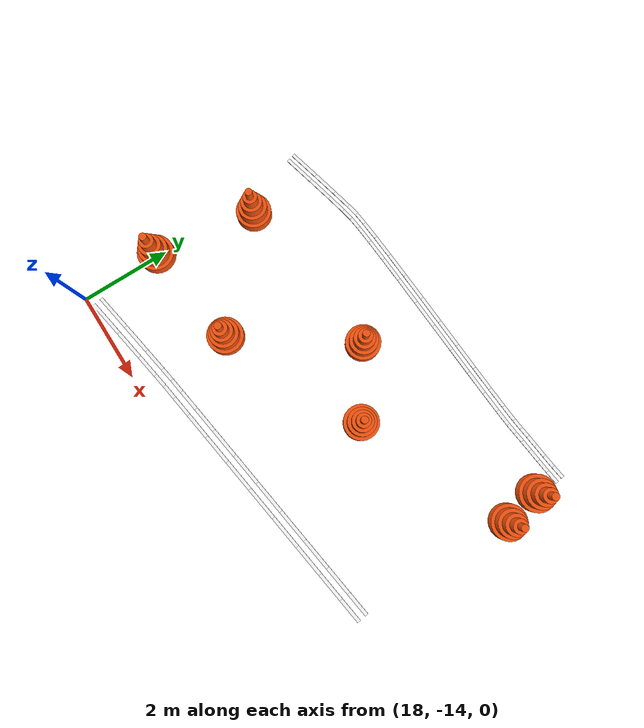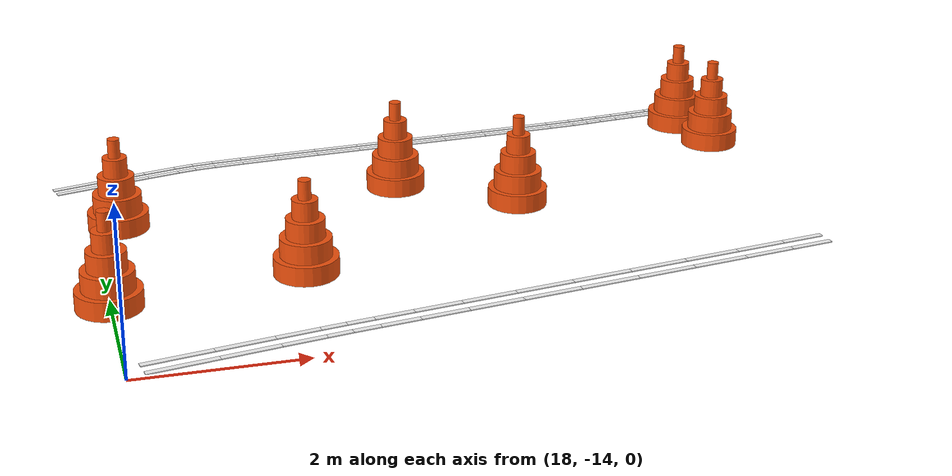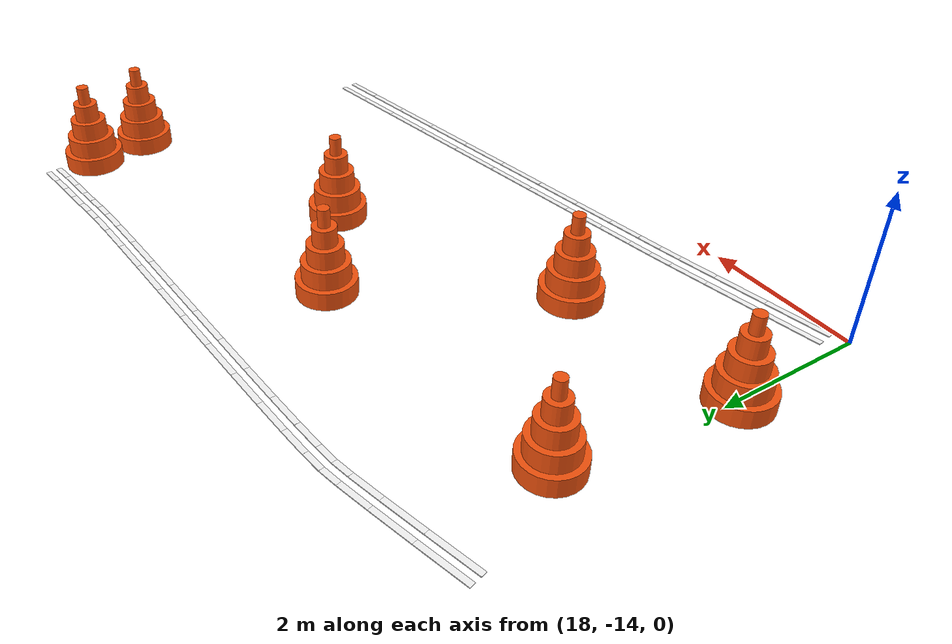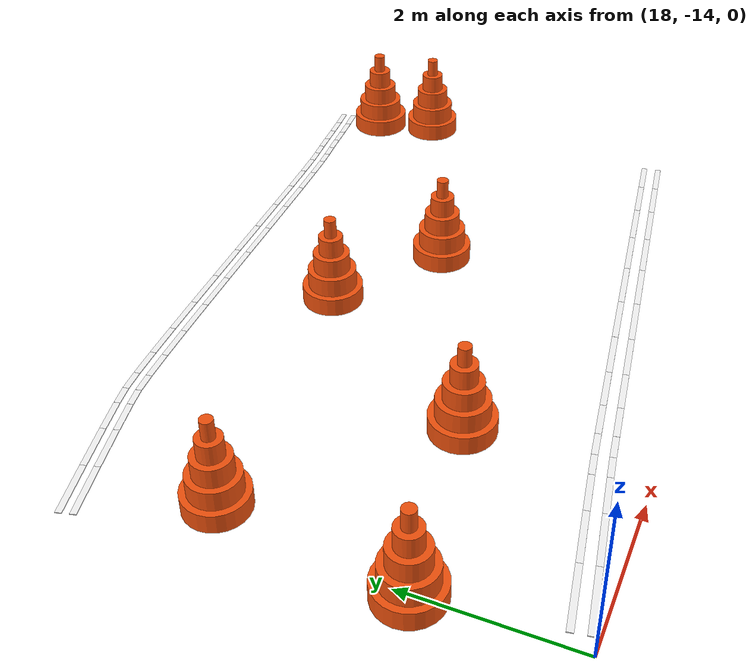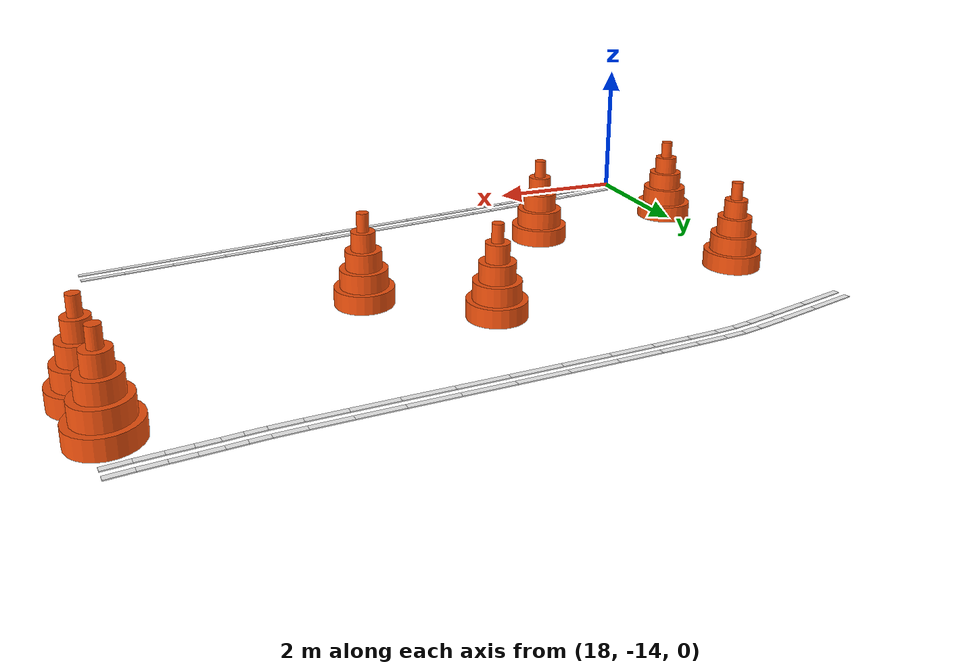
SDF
<sdf version="1.9">
 <world name="igvc_competition">
  <model name="Line_001_0330">
   <static>1</static>
   <pose>18.5726 -13.6438 0.011 0 0 0.173252</pose>
   <link name="link">
    <visual name="visual">
     <geometry><box><size>0.8359 0.0762 0.012</size></box></geometry>
     <material>
      <ambient>0.98 0.98 0.98 1</ambient>
      <diffuse>0.98 0.98 0.98 1</diffuse>
      <specular>0.05 0.05 0.05 1</specular>
      <emissive>0.9 0.9 0.9 1</emissive>
     </material>
    </visual>
   </link>
  </model>
  <model name="Line_001_0331">
   <static>1</static>
   <pose>18.6071 -13.8407 0.011 0 0 0.173272</pose>
   <link name="link">
    <visual name="visual">
     <geometry><box><size>0.8358 0.0762 0.012</size></box></geometry>
     <material>
      <ambient>0.98 0.98 0.98 1</ambient>
      <diffuse>0.98 0.98 0.98 1</diffuse>
      <specular>0.05 0.05 0.05 1</specular>
      <emissive>0.9 0.9 0.9 1</emissive>
     </material>
    </visual>
   </link>
  </model>
  <model name="Line_001_0332">
   <static>1</static>
   <pose>19.3305 -13.5115 0.011 0 0 0.172026</pose>
   <link name="link">
    <visual name="visual">
     <geometry><box><size>0.7028 0.0762 0.012</size></box></geometry>
     <material>
      <ambient>0.98 0.98 0.98 1</ambient>
      <diffuse>0.98 0.98 0.98 1</diffuse>
      <specular>0.05 0.05 0.05 1</specular>
      <emissive>0.9 0.9 0.9 1</emissive>
     </material>
    </visual>
   </link>
  </model>
  <model name="Line_001_0333">
   <static>1</static>
   <pose>19.3647 -13.7086 0.011 0 0 0.171983</pose>
   <link name="link">
    <visual name="visual">
     <geometry><box><size>0.7024 0.0762 0.012</size></box></geometry>
     <material>
      <ambient>0.98 0.98 0.98 1</ambient>
      <diffuse>0.98 0.98 0.98 1</diffuse>
      <specular>0.05 0.05 0.05 1</specular>
      <emissive>0.9 0.9 0.9 1</emissive>
     </material>
    </visual>
   </link>
  </model>
  <model name="Line_001_0334">
   <static>1</static>
   <pose>19.9365 -13.4070 0.011 0 0 0.169452</pose>
   <link name="link">
    <visual name="visual">
     <geometry><box><size>0.5272 0.0762 0.012</size></box></geometry>
     <material>
      <ambient>0.98 0.98 0.98 1</ambient>
      <diffuse>0.98 0.98 0.98 1</diffuse>
      <specular>0.05 0.05 0.05 1</specular>
      <emissive>0.9 0.9 0.9 1</emissive>
     </material>
    </visual>
   </link>
  </model>
  <model name="Line_001_0335">
   <static>1</static>
   <pose>19.9699 -13.6042 0.011 0 0 0.169430</pose>
   <link name="link">
    <visual name="visual">
     <geometry><box><size>0.5260 0.0762 0.012</size></box></geometry>
     <material>
      <ambient>0.98 0.98 0.98 1</ambient>
      <diffuse>0.98 0.98 0.98 1</diffuse>
      <specular>0.05 0.05 0.05 1</specular>
      <emissive>0.9 0.9 0.9 1</emissive>
     </material>
    </visual>
   </link>
  </model>
  <model name="Line_001_0336">
   <static>1</static>
   <pose>20.3488 -13.3377 0.011 0 0 0.161531</pose>
   <link name="link">
    <visual name="visual">
     <geometry><box><size>0.3090 0.0762 0.012</size></box></geometry>
     <material>
      <ambient>0.98 0.98 0.98 1</ambient>
      <diffuse>0.98 0.98 0.98 1</diffuse>
      <specular>0.05 0.05 0.05 1</specular>
      <emissive>0.9 0.9 0.9 1</emissive>
     </material>
    </visual>
   </link>
  </model>
  <model name="Line_001_0337">
   <static>1</static>
   <pose>20.3806 -13.5351 0.011 0 0 0.161667</pose>
   <link name="link">
    <visual name="visual">
     <geometry><box><size>0.3069 0.0762 0.012</size></box></geometry>
     <material>
      <ambient>0.98 0.98 0.98 1</ambient>
      <diffuse>0.98 0.98 0.98 1</diffuse>
      <specular>0.05 0.05 0.05 1</specular>
      <emissive>0.9 0.9 0.9 1</emissive>
     </material>
    </visual>
   </link>
  </model>
  <model name="Line_001_0338">
   <static>1</static>
   <pose>20.6669 -13.2881 0.011 0 0 0.148063</pose>
   <link name="link">
    <visual name="visual">
     <geometry><box><size>0.3349 0.0762 0.012</size></box></geometry>
     <material>
      <ambient>0.98 0.98 0.98 1</ambient>
      <diffuse>0.98 0.98 0.98 1</diffuse>
      <specular>0.05 0.05 0.05 1</specular>
      <emissive>0.9 0.9 0.9 1</emissive>
     </material>
    </visual>
   </link>
  </model>
  <model name="Line_001_0339">
   <static>1</static>
   <pose>20.6970 -13.4858 0.011 0 0 0.148045</pose>
   <link name="link">
    <visual name="visual">
     <geometry><box><size>0.3335 0.0762 0.012</size></box></geometry>
     <material>
      <ambient>0.98 0.98 0.98 1</ambient>
      <diffuse>0.98 0.98 0.98 1</diffuse>
      <specular>0.05 0.05 0.05 1</specular>
      <emissive>0.9 0.9 0.9 1</emissive>
     </material>
    </visual>
   </link>
  </model>
  <model name="Line_001_0340">
   <static>1</static>
   <pose>21.0710 -13.2280 0.011 0 0 0.147147</pose>
   <link name="link">
    <visual name="visual">
     <geometry><box><size>0.4822 0.0762 0.012</size></box></geometry>
     <material>
      <ambient>0.98 0.98 0.98 1</ambient>
      <diffuse>0.98 0.98 0.98 1</diffuse>
      <specular>0.05 0.05 0.05 1</specular>
      <emissive>0.9 0.9 0.9 1</emissive>
     </material>
    </visual>
   </link>
  </model>
  <model name="Line_001_0341">
   <static>1</static>
   <pose>21.1004 -13.4259 0.011 0 0 0.147208</pose>
   <link name="link">
    <visual name="visual">
     <geometry><box><size>0.4820 0.0762 0.012</size></box></geometry>
     <material>
      <ambient>0.98 0.98 0.98 1</ambient>
      <diffuse>0.98 0.98 0.98 1</diffuse>
      <specular>0.05 0.05 0.05 1</specular>
      <emissive>0.9 0.9 0.9 1</emissive>
     </material>
    </visual>
   </link>
  </model>
  <model name="Line_001_0342">
   <static>1</static>
   <pose>21.6059 -13.1488 0.011 0 0 0.146877</pose>
   <link name="link">
    <visual name="visual">
     <geometry><box><size>0.5993 0.0762 0.012</size></box></geometry>
     <material>
      <ambient>0.98 0.98 0.98 1</ambient>
      <diffuse>0.98 0.98 0.98 1</diffuse>
      <specular>0.05 0.05 0.05 1</specular>
      <emissive>0.9 0.9 0.9 1</emissive>
     </material>
    </visual>
   </link>
  </model>
  <model name="Line_001_0343">
   <static>1</static>
   <pose>21.6352 -13.3467 0.011 0 0 0.146712</pose>
   <link name="link">
    <visual name="visual">
     <geometry><box><size>0.5992 0.0762 0.012</size></box></geometry>
     <material>
      <ambient>0.98 0.98 0.98 1</ambient>
      <diffuse>0.98 0.98 0.98 1</diffuse>
      <specular>0.05 0.05 0.05 1</specular>
      <emissive>0.9 0.9 0.9 1</emissive>
     </material>
    </visual>
   </link>
  </model>
  <model name="Line_001_0344">
   <static>1</static>
   <pose>22.2416 -13.0549 0.011 0 0 0.146598</pose>
   <link name="link">
    <visual name="visual">
     <geometry><box><size>0.6860 0.0762 0.012</size></box></geometry>
     <material>
      <ambient>0.98 0.98 0.98 1</ambient>
      <diffuse>0.98 0.98 0.98 1</diffuse>
      <specular>0.05 0.05 0.05 1</specular>
      <emissive>0.9 0.9 0.9 1</emissive>
     </material>
    </visual>
   </link>
  </model>
  <model name="Line_001_0345">
   <static>1</static>
   <pose>22.2708 -13.2528 0.011 0 0 0.146619</pose>
   <link name="link">
    <visual name="visual">
     <geometry><box><size>0.6859 0.0762 0.012</size></box></geometry>
     <material>
      <ambient>0.98 0.98 0.98 1</ambient>
      <diffuse>0.98 0.98 0.98 1</diffuse>
      <specular>0.05 0.05 0.05 1</specular>
      <emissive>0.9 0.9 0.9 1</emissive>
     </material>
    </visual>
   </link>
  </model>
  <model name="Line_001_0346">
   <static>1</static>
   <pose>22.9478 -12.9506 0.011 0 0 0.146530</pose>
   <link name="link">
    <visual name="visual">
     <geometry><box><size>0.7417 0.0762 0.012</size></box></geometry>
     <material>
      <ambient>0.98 0.98 0.98 1</ambient>
      <diffuse>0.98 0.98 0.98 1</diffuse>
      <specular>0.05 0.05 0.05 1</specular>
      <emissive>0.9 0.9 0.9 1</emissive>
     </material>
    </visual>
   </link>
  </model>
  <model name="Line_001_0347">
   <static>1</static>
   <pose>22.9770 -13.1486 0.011 0 0 0.146530</pose>
   <link name="link">
    <visual name="visual">
     <geometry><box><size>0.7417 0.0762 0.012</size></box></geometry>
     <material>
      <ambient>0.98 0.98 0.98 1</ambient>
      <diffuse>0.98 0.98 0.98 1</diffuse>
      <specular>0.05 0.05 0.05 1</specular>
      <emissive>0.9 0.9 0.9 1</emissive>
     </material>
    </visual>
   </link>
  </model>
  <model name="Line_001_0348">
   <static>1</static>
   <pose>23.6940 -12.8406 0.011 0 0 0.146433</pose>
   <link name="link">
    <visual name="visual">
     <geometry><box><size>0.7669 0.0762 0.012</size></box></geometry>
     <material>
      <ambient>0.98 0.98 0.98 1</ambient>
      <diffuse>0.98 0.98 0.98 1</diffuse>
      <specular>0.05 0.05 0.05 1</specular>
      <emissive>0.9 0.9 0.9 1</emissive>
     </material>
    </visual>
   </link>
  </model>
  <model name="Line_001_0349">
   <static>1</static>
   <pose>23.7233 -13.0385 0.011 0 0 0.146433</pose>
   <link name="link">
    <visual name="visual">
     <geometry><box><size>0.7669 0.0762 0.012</size></box></geometry>
     <material>
      <ambient>0.98 0.98 0.98 1</ambient>
      <diffuse>0.98 0.98 0.98 1</diffuse>
      <specular>0.05 0.05 0.05 1</specular>
      <emissive>0.9 0.9 0.9 1</emissive>
     </material>
    </visual>
   </link>
  </model>
  <model name="Line_001_0350">
   <static>1</static>
   <pose>24.4501 -12.7291 0.011 0 0 0.146410</pose>
   <link name="link">
    <visual name="visual">
     <geometry><box><size>0.7615 0.0762 0.012</size></box></geometry>
     <material>
      <ambient>0.98 0.98 0.98 1</ambient>
      <diffuse>0.98 0.98 0.98 1</diffuse>
      <specular>0.05 0.05 0.05 1</specular>
      <emissive>0.9 0.9 0.9 1</emissive>
     </material>
    </visual>
   </link>
  </model>
  <model name="Line_001_0351">
   <static>1</static>
   <pose>24.4793 -12.9269 0.011 0 0 0.146410</pose>
   <link name="link">
    <visual name="visual">
     <geometry><box><size>0.7615 0.0762 0.012</size></box></geometry>
     <material>
      <ambient>0.98 0.98 0.98 1</ambient>
      <diffuse>0.98 0.98 0.98 1</diffuse>
      <specular>0.05 0.05 0.05 1</specular>
      <emissive>0.9 0.9 0.9 1</emissive>
     </material>
    </visual>
   </link>
  </model>
  <model name="Line_001_0352">
   <static>1</static>
   <pose>25.1856 -12.6206 0.011 0 0 0.146381</pose>
   <link name="link">
    <visual name="visual">
     <geometry><box><size>0.7254 0.0762 0.012</size></box></geometry>
     <material>
      <ambient>0.98 0.98 0.98 1</ambient>
      <diffuse>0.98 0.98 0.98 1</diffuse>
      <specular>0.05 0.05 0.05 1</specular>
      <emissive>0.9 0.9 0.9 1</emissive>
     </material>
    </visual>
   </link>
  </model>
  <model name="Line_001_0353">
   <static>1</static>
   <pose>25.2148 -12.8184 0.011 0 0 0.146518</pose>
   <link name="link">
    <visual name="visual">
     <geometry><box><size>0.7254 0.0762 0.012</size></box></geometry>
     <material>
      <ambient>0.98 0.98 0.98 1</ambient>
      <diffuse>0.98 0.98 0.98 1</diffuse>
      <specular>0.05 0.05 0.05 1</specular>
      <emissive>0.9 0.9 0.9 1</emissive>
     </material>
    </visual>
   </link>
  </model>
  <model name="Line_001_0354">
   <static>1</static>
   <pose>25.8702 -12.5196 0.011 0 0 0.146600</pose>
   <link name="link">
    <visual name="visual">
     <geometry><box><size>0.6586 0.0762 0.012</size></box></geometry>
     <material>
      <ambient>0.98 0.98 0.98 1</ambient>
      <diffuse>0.98 0.98 0.98 1</diffuse>
      <specular>0.05 0.05 0.05 1</specular>
      <emissive>0.9 0.9 0.9 1</emissive>
     </material>
    </visual>
   </link>
  </model>
  <model name="Line_001_0355">
   <static>1</static>
   <pose>25.8993 -12.7174 0.011 0 0 0.146450</pose>
   <link name="link">
    <visual name="visual">
     <geometry><box><size>0.6585 0.0762 0.012</size></box></geometry>
     <material>
      <ambient>0.98 0.98 0.98 1</ambient>
      <diffuse>0.98 0.98 0.98 1</diffuse>
      <specular>0.05 0.05 0.05 1</specular>
      <emissive>0.9 0.9 0.9 1</emissive>
     </material>
    </visual>
   </link>
  </model>
  <model name="Line_001_0356">
   <static>1</static>
   <pose>26.4734 -12.4305 0.011 0 0 0.146660</pose>
   <link name="link">
    <visual name="visual">
     <geometry><box><size>0.5611 0.0762 0.012</size></box></geometry>
     <material>
      <ambient>0.98 0.98 0.98 1</ambient>
      <diffuse>0.98 0.98 0.98 1</diffuse>
      <specular>0.05 0.05 0.05 1</specular>
      <emissive>0.9 0.9 0.9 1</emissive>
     </material>
    </visual>
   </link>
  </model>
  <model name="Line_001_0357">
   <static>1</static>
   <pose>26.5027 -12.6284 0.011 0 0 0.146634</pose>
   <link name="link">
    <visual name="visual">
     <geometry><box><size>0.5612 0.0762 0.012</size></box></geometry>
     <material>
      <ambient>0.98 0.98 0.98 1</ambient>
      <diffuse>0.98 0.98 0.98 1</diffuse>
      <specular>0.05 0.05 0.05 1</specular>
      <emissive>0.9 0.9 0.9 1</emissive>
     </material>
    </visual>
   </link>
  </model>
  <model name="Line_002_0330">
   <static>1</static>
   <pose>17.9125 -8.3841 0.011 0 0 0.249206</pose>
   <link name="link">
    <visual name="visual">
     <geometry><box><size>0.6885 0.0762 0.012</size></box></geometry>
     <material>
      <ambient>0.98 0.98 0.98 1</ambient>
      <diffuse>0.98 0.98 0.98 1</diffuse>
      <specular>0.05 0.05 0.05 1</specular>
      <emissive>0.9 0.9 0.9 1</emissive>
     </material>
    </visual>
   </link>
  </model>
  <model name="Line_002_0331">
   <static>1</static>
   <pose>17.9522 -8.5371 0.011 0 0 0.249175</pose>
   <link name="link">
    <visual name="visual">
     <geometry><box><size>0.6877 0.0762 0.012</size></box></geometry>
     <material>
      <ambient>0.98 0.98 0.98 1</ambient>
      <diffuse>0.98 0.98 0.98 1</diffuse>
      <specular>0.05 0.05 0.05 1</specular>
      <emissive>0.9 0.9 0.9 1</emissive>
     </material>
    </visual>
   </link>
  </model>
  <model name="Line_002_0332">
   <static>1</static>
   <pose>18.5268 -8.2293 0.011 0 0 0.244015</pose>
   <link name="link">
    <visual name="visual">
     <geometry><box><size>0.5786 0.0762 0.012</size></box></geometry>
     <material>
      <ambient>0.98 0.98 0.98 1</ambient>
      <diffuse>0.98 0.98 0.98 1</diffuse>
      <specular>0.05 0.05 0.05 1</specular>
      <emissive>0.9 0.9 0.9 1</emissive>
     </material>
    </visual>
   </link>
  </model>
  <model name="Line_002_0333">
   <static>1</static>
   <pose>18.5656 -8.3825 0.011 0 0 0.244054</pose>
   <link name="link">
    <visual name="visual">
     <geometry><box><size>0.5773 0.0762 0.012</size></box></geometry>
     <material>
      <ambient>0.98 0.98 0.98 1</ambient>
      <diffuse>0.98 0.98 0.98 1</diffuse>
      <specular>0.05 0.05 0.05 1</specular>
      <emissive>0.9 0.9 0.9 1</emissive>
     </material>
    </visual>
   </link>
  </model>
  <model name="Line_002_0334">
   <static>1</static>
   <pose>19.0190 -8.1092 0.011 0 0 0.233199</pose>
   <link name="link">
    <visual name="visual">
     <geometry><box><size>0.4345 0.0762 0.012</size></box></geometry>
     <material>
      <ambient>0.98 0.98 0.98 1</ambient>
      <diffuse>0.98 0.98 0.98 1</diffuse>
      <specular>0.05 0.05 0.05 1</specular>
      <emissive>0.9 0.9 0.9 1</emissive>
     </material>
    </visual>
   </link>
  </model>
  <model name="Line_002_0335">
   <static>1</static>
   <pose>19.0553 -8.2630 0.011 0 0 0.233270</pose>
   <link name="link">
    <visual name="visual">
     <geometry><box><size>0.4309 0.0762 0.012</size></box></geometry>
     <material>
      <ambient>0.98 0.98 0.98 1</ambient>
      <diffuse>0.98 0.98 0.98 1</diffuse>
      <specular>0.05 0.05 0.05 1</specular>
      <emissive>0.9 0.9 0.9 1</emissive>
     </material>
    </visual>
   </link>
  </model>
  <model name="Line_002_0336">
   <static>1</static>
   <pose>19.3563 -8.0333 0.011 0 0 0.200750</pose>
   <link name="link">
    <visual name="visual">
     <geometry><box><size>0.2573 0.0762 0.012</size></box></geometry>
     <material>
      <ambient>0.98 0.98 0.98 1</ambient>
      <diffuse>0.98 0.98 0.98 1</diffuse>
      <specular>0.05 0.05 0.05 1</specular>
      <emissive>0.9 0.9 0.9 1</emissive>
     </material>
    </visual>
   </link>
  </model>
  <model name="Line_002_0337">
   <static>1</static>
   <pose>19.3861 -8.1884 0.011 0 0 0.201438</pose>
   <link name="link">
    <visual name="visual">
     <geometry><box><size>0.2474 0.0762 0.012</size></box></geometry>
     <material>
      <ambient>0.98 0.98 0.98 1</ambient>
      <diffuse>0.98 0.98 0.98 1</diffuse>
      <specular>0.05 0.05 0.05 1</specular>
      <emissive>0.9 0.9 0.9 1</emissive>
     </material>
    </visual>
   </link>
  </model>
  <model name="Line_002_0338">
   <static>1</static>
   <pose>19.6210 -7.9915 0.011 0 0 0.116669</pose>
   <link name="link">
    <visual name="visual">
     <geometry><box><size>0.2792 0.0762 0.012</size></box></geometry>
     <material>
      <ambient>0.98 0.98 0.98 1</ambient>
      <diffuse>0.98 0.98 0.98 1</diffuse>
      <specular>0.05 0.05 0.05 1</specular>
      <emissive>0.9 0.9 0.9 1</emissive>
     </material>
    </visual>
   </link>
  </model>
  <model name="Line_002_0339">
   <static>1</static>
   <pose>19.6411 -8.1481 0.011 0 0 0.116025</pose>
   <link name="link">
    <visual name="visual">
     <geometry><box><size>0.2695 0.0762 0.012</size></box></geometry>
     <material>
      <ambient>0.98 0.98 0.98 1</ambient>
      <diffuse>0.98 0.98 0.98 1</diffuse>
      <specular>0.05 0.05 0.05 1</specular>
      <emissive>0.9 0.9 0.9 1</emissive>
     </material>
    </visual>
   </link>
  </model>
  <model name="Line_002_0340">
   <static>1</static>
   <pose>19.9590 -7.9580 0.011 0 0 0.086110</pose>
   <link name="link">
    <visual name="visual">
     <geometry><box><size>0.4000 0.0762 0.012</size></box></geometry>
     <material>
      <ambient>0.98 0.98 0.98 1</ambient>
      <diffuse>0.98 0.98 0.98 1</diffuse>
      <specular>0.05 0.05 0.05 1</specular>
      <emissive>0.9 0.9 0.9 1</emissive>
     </material>
    </visual>
   </link>
  </model>
  <model name="Line_002_0341">
   <static>1</static>
   <pose>19.9724 -8.1155 0.011 0 0 0.085908</pose>
   <link name="link">
    <visual name="visual">
     <geometry><box><size>0.3963 0.0762 0.012</size></box></geometry>
     <material>
      <ambient>0.98 0.98 0.98 1</ambient>
      <diffuse>0.98 0.98 0.98 1</diffuse>
      <specular>0.05 0.05 0.05 1</specular>
      <emissive>0.9 0.9 0.9 1</emissive>
     </material>
    </visual>
   </link>
  </model>
  <model name="Line_002_0342">
   <static>1</static>
   <pose>20.4061 -7.9228 0.011 0 0 0.072483</pose>
   <link name="link">
    <visual name="visual">
     <geometry><box><size>0.4971 0.0762 0.012</size></box></geometry>
     <material>
      <ambient>0.98 0.98 0.98 1</ambient>
      <diffuse>0.98 0.98 0.98 1</diffuse>
      <specular>0.05 0.05 0.05 1</specular>
      <emissive>0.9 0.9 0.9 1</emissive>
     </material>
    </visual>
   </link>
  </model>
  <model name="Line_002_0343">
   <static>1</static>
   <pose>20.4169 -8.0805 0.011 0 0 0.072731</pose>
   <link name="link">
    <visual name="visual">
     <geometry><box><size>0.4954 0.0762 0.012</size></box></geometry>
     <material>
      <ambient>0.98 0.98 0.98 1</ambient>
      <diffuse>0.98 0.98 0.98 1</diffuse>
      <specular>0.05 0.05 0.05 1</specular>
      <emissive>0.9 0.9 0.9 1</emissive>
     </material>
    </visual>
   </link>
  </model>
  <model name="Line_002_0344">
   <static>1</static>
   <pose>20.9381 -7.8862 0.011 0 0 0.065377</pose>
   <link name="link">
    <visual name="visual">
     <geometry><box><size>0.5694 0.0762 0.012</size></box></geometry>
     <material>
      <ambient>0.98 0.98 0.98 1</ambient>
      <diffuse>0.98 0.98 0.98 1</diffuse>
      <specular>0.05 0.05 0.05 1</specular>
      <emissive>0.9 0.9 0.9 1</emissive>
     </material>
    </visual>
   </link>
  </model>
  <model name="Line_002_0345">
   <static>1</static>
   <pose>20.9475 -8.0439 0.011 0 0 0.065316</pose>
   <link name="link">
    <visual name="visual">
     <geometry><box><size>0.5684 0.0762 0.012</size></box></geometry>
     <material>
      <ambient>0.98 0.98 0.98 1</ambient>
      <diffuse>0.98 0.98 0.98 1</diffuse>
      <specular>0.05 0.05 0.05 1</specular>
      <emissive>0.9 0.9 0.9 1</emissive>
     </material>
    </visual>
   </link>
  </model>
  <model name="Line_002_0346">
   <static>1</static>
   <pose>21.5297 -7.8487 0.011 0 0 0.061396</pose>
   <link name="link">
    <visual name="visual">
     <geometry><box><size>0.6161 0.0762 0.012</size></box></geometry>
     <material>
      <ambient>0.98 0.98 0.98 1</ambient>
      <diffuse>0.98 0.98 0.98 1</diffuse>
      <specular>0.05 0.05 0.05 1</specular>
      <emissive>0.9 0.9 0.9 1</emissive>
     </material>
    </visual>
   </link>
  </model>
  <model name="Line_002_0347">
   <static>1</static>
   <pose>21.5383 -8.0066 0.011 0 0 0.061284</pose>
   <link name="link">
    <visual name="visual">
     <geometry><box><size>0.6156 0.0762 0.012</size></box></geometry>
     <material>
      <ambient>0.98 0.98 0.98 1</ambient>
      <diffuse>0.98 0.98 0.98 1</diffuse>
      <specular>0.05 0.05 0.05 1</specular>
      <emissive>0.9 0.9 0.9 1</emissive>
     </material>
    </visual>
   </link>
  </model>
  <model name="Line_002_0348">
   <static>1</static>
   <pose>22.1551 -7.8110 0.011 0 0 0.059207</pose>
   <link name="link">
    <visual name="visual">
     <geometry><box><size>0.6371 0.0762 0.012</size></box></geometry>
     <material>
      <ambient>0.98 0.98 0.98 1</ambient>
      <diffuse>0.98 0.98 0.98 1</diffuse>
      <specular>0.05 0.05 0.05 1</specular>
      <emissive>0.9 0.9 0.9 1</emissive>
     </material>
    </visual>
   </link>
  </model>
  <model name="Line_002_0349">
   <static>1</static>
   <pose>22.1634 -7.9688 0.011 0 0 0.059226</pose>
   <link name="link">
    <visual name="visual">
     <geometry><box><size>0.6369 0.0762 0.012</size></box></geometry>
     <material>
      <ambient>0.98 0.98 0.98 1</ambient>
      <diffuse>0.98 0.98 0.98 1</diffuse>
      <specular>0.05 0.05 0.05 1</specular>
      <emissive>0.9 0.9 0.9 1</emissive>
     </material>
    </visual>
   </link>
  </model>
  <model name="Line_002_0350">
   <static>1</static>
   <pose>22.7889 -7.7736 0.011 0 0 0.058524</pose>
   <link name="link">
    <visual name="visual">
     <geometry><box><size>0.6326 0.0762 0.012</size></box></geometry>
     <material>
      <ambient>0.98 0.98 0.98 1</ambient>
      <diffuse>0.98 0.98 0.98 1</diffuse>
      <specular>0.05 0.05 0.05 1</specular>
      <emissive>0.9 0.9 0.9 1</emissive>
     </material>
    </visual>
   </link>
  </model>
  <model name="Line_002_0351">
   <static>1</static>
   <pose>22.7970 -7.9315 0.011 0 0 0.058524</pose>
   <link name="link">
    <visual name="visual">
     <geometry><box><size>0.6326 0.0762 0.012</size></box></geometry>
     <material>
      <ambient>0.98 0.98 0.98 1</ambient>
      <diffuse>0.98 0.98 0.98 1</diffuse>
      <specular>0.05 0.05 0.05 1</specular>
      <emissive>0.9 0.9 0.9 1</emissive>
     </material>
    </visual>
   </link>
  </model>
  <model name="Line_002_0352">
   <static>1</static>
   <pose>23.4053 -7.7372 0.011 0 0 0.059302</pose>
   <link name="link">
    <visual name="visual">
     <geometry><box><size>0.6024 0.0762 0.012</size></box></geometry>
     <material>
      <ambient>0.98 0.98 0.98 1</ambient>
      <diffuse>0.98 0.98 0.98 1</diffuse>
      <specular>0.05 0.05 0.05 1</specular>
      <emissive>0.9 0.9 0.9 1</emissive>
     </material>
    </visual>
   </link>
  </model>
  <model name="Line_002_0353">
   <static>1</static>
   <pose>23.4136 -7.8952 0.011 0 0 0.059272</pose>
   <link name="link">
    <visual name="visual">
     <geometry><box><size>0.6027 0.0762 0.012</size></box></geometry>
     <material>
      <ambient>0.98 0.98 0.98 1</ambient>
      <diffuse>0.98 0.98 0.98 1</diffuse>
      <specular>0.05 0.05 0.05 1</specular>
      <emissive>0.9 0.9 0.9 1</emissive>
     </material>
    </visual>
   </link>
  </model>
  <model name="Line_002_0354">
   <static>1</static>
   <pose>23.9785 -7.7025 0.011 0 0 0.061905</pose>
   <link name="link">
    <visual name="visual">
     <geometry><box><size>0.5463 0.0762 0.012</size></box></geometry>
     <material>
      <ambient>0.98 0.98 0.98 1</ambient>
      <diffuse>0.98 0.98 0.98 1</diffuse>
      <specular>0.05 0.05 0.05 1</specular>
      <emissive>0.9 0.9 0.9 1</emissive>
     </material>
    </visual>
   </link>
  </model>
  <model name="Line_002_0355">
   <static>1</static>
   <pose>23.9873 -7.8604 0.011 0 0 0.062020</pose>
   <link name="link">
    <visual name="visual">
     <geometry><box><size>0.5470 0.0762 0.012</size></box></geometry>
     <material>
      <ambient>0.98 0.98 0.98 1</ambient>
      <diffuse>0.98 0.98 0.98 1</diffuse>
      <specular>0.05 0.05 0.05 1</specular>
      <emissive>0.9 0.9 0.9 1</emissive>
     </material>
    </visual>
   </link>
  </model>
  <model name="Line_002_0356">
   <static>1</static>
   <pose>24.4829 -7.6700 0.011 0 0 0.067442</pose>
   <link name="link">
    <visual name="visual">
     <geometry><box><size>0.4645 0.0762 0.012</size></box></geometry>
     <material>
      <ambient>0.98 0.98 0.98 1</ambient>
      <diffuse>0.98 0.98 0.98 1</diffuse>
      <specular>0.05 0.05 0.05 1</specular>
      <emissive>0.9 0.9 0.9 1</emissive>
     </material>
    </visual>
   </link>
  </model>
  <model name="Line_002_0357">
   <static>1</static>
   <pose>24.4928 -7.8277 0.011 0 0 0.067439</pose>
   <link name="link">
    <visual name="visual">
     <geometry><box><size>0.4660 0.0762 0.012</size></box></geometry>
     <material>
      <ambient>0.98 0.98 0.98 1</ambient>
      <diffuse>0.98 0.98 0.98 1</diffuse>
      <specular>0.05 0.05 0.05 1</specular>
      <emissive>0.9 0.9 0.9 1</emissive>
     </material>
    </visual>
   </link>
  </model>
  <model name="Line_002_0358">
   <static>1</static>
   <pose>24.8922 -7.6402 0.011 0 0 0.078946</pose>
   <link name="link">
    <visual name="visual">
     <geometry><box><size>0.3563 0.0762 0.012</size></box></geometry>
     <material>
      <ambient>0.98 0.98 0.98 1</ambient>
      <diffuse>0.98 0.98 0.98 1</diffuse>
      <specular>0.05 0.05 0.05 1</specular>
      <emissive>0.9 0.9 0.9 1</emissive>
     </material>
    </visual>
   </link>
  </model>
  <model name="Line_002_0359">
   <static>1</static>
   <pose>24.9046 -7.7978 0.011 0 0 0.079010</pose>
   <link name="link">
    <visual name="visual">
     <geometry><box><size>0.3598 0.0762 0.012</size></box></geometry>
     <material>
      <ambient>0.98 0.98 0.98 1</ambient>
      <diffuse>0.98 0.98 0.98 1</diffuse>
      <specular>0.05 0.05 0.05 1</specular>
      <emissive>0.9 0.9 0.9 1</emissive>
     </material>
    </visual>
   </link>
  </model>
  <model name="Line_002_0360">
   <static>1</static>
   <pose>25.1807 -7.6140 0.011 0 0 0.109074</pose>
   <link name="link">
    <visual name="visual">
     <geometry><box><size>0.2232 0.0762 0.012</size></box></geometry>
     <material>
      <ambient>0.98 0.98 0.98 1</ambient>
      <diffuse>0.98 0.98 0.98 1</diffuse>
      <specular>0.05 0.05 0.05 1</specular>
      <emissive>0.9 0.9 0.9 1</emissive>
     </material>
    </visual>
   </link>
  </model>
  <model name="Line_002_0361">
   <static>1</static>
   <pose>25.1970 -7.7713 0.011 0 0 0.108764</pose>
   <link name="link">
    <visual name="visual">
     <geometry><box><size>0.2275 0.0762 0.012</size></box></geometry>
     <material>
      <ambient>0.98 0.98 0.98 1</ambient>
      <diffuse>0.98 0.98 0.98 1</diffuse>
      <specular>0.05 0.05 0.05 1</specular>
      <emissive>0.9 0.9 0.9 1</emissive>
     </material>
    </visual>
   </link>
  </model>
  <model name="Line_002_0362">
   <static>1</static>
   <pose>25.4008 -7.5876 0.011 0 0 0.130780</pose>
   <link name="link">
    <visual name="visual">
     <geometry><box><size>0.2201 0.0762 0.012</size></box></geometry>
     <material>
      <ambient>0.98 0.98 0.98 1</ambient>
      <diffuse>0.98 0.98 0.98 1</diffuse>
      <specular>0.05 0.05 0.05 1</specular>
      <emissive>0.9 0.9 0.9 1</emissive>
     </material>
    </visual>
   </link>
  </model>
  <model name="Line_002_0363">
   <static>1</static>
   <pose>25.4193 -7.7445 0.011 0 0 0.131112</pose>
   <link name="link">
    <visual name="visual">
     <geometry><box><size>0.2203 0.0762 0.012</size></box></geometry>
     <material>
      <ambient>0.98 0.98 0.98 1</ambient>
      <diffuse>0.98 0.98 0.98 1</diffuse>
      <specular>0.05 0.05 0.05 1</specular>
      <emissive>0.9 0.9 0.9 1</emissive>
     </material>
    </visual>
   </link>
  </model>
  <model name="Line_002_0364">
   <static>1</static>
   <pose>25.6337 -7.5595 0.011 0 0 0.110569</pose>
   <link name="link">
    <visual name="visual">
     <geometry><box><size>0.2492 0.0762 0.012</size></box></geometry>
     <material>
      <ambient>0.98 0.98 0.98 1</ambient>
      <diffuse>0.98 0.98 0.98 1</diffuse>
      <specular>0.05 0.05 0.05 1</specular>
      <emissive>0.9 0.9 0.9 1</emissive>
     </material>
    </visual>
   </link>
  </model>
  <model name="Line_002_0365">
   <static>1</static>
   <pose>25.6514 -7.7165 0.011 0 0 0.110255</pose>
   <link name="link">
    <visual name="visual">
     <geometry><box><size>0.2472 0.0762 0.012</size></box></geometry>
     <material>
      <ambient>0.98 0.98 0.98 1</ambient>
      <diffuse>0.98 0.98 0.98 1</diffuse>
      <specular>0.05 0.05 0.05 1</specular>
      <emissive>0.9 0.9 0.9 1</emissive>
     </material>
    </visual>
   </link>
  </model>
  <model name="Line_002_0366">
   <static>1</static>
   <pose>25.8918 -7.5312 0.011 0 0 0.107222</pose>
   <link name="link">
    <visual name="visual">
     <geometry><box><size>0.2701 0.0762 0.012</size></box></geometry>
     <material>
      <ambient>0.98 0.98 0.98 1</ambient>
      <diffuse>0.98 0.98 0.98 1</diffuse>
      <specular>0.05 0.05 0.05 1</specular>
      <emissive>0.9 0.9 0.9 1</emissive>
     </material>
    </visual>
   </link>
  </model>
  <model name="Line_002_0367">
   <static>1</static>
   <pose>25.9087 -7.6884 0.011 0 0 0.107392</pose>
   <link name="link">
    <visual name="visual">
     <geometry><box><size>0.2706 0.0762 0.012</size></box></geometry>
     <material>
      <ambient>0.98 0.98 0.98 1</ambient>
      <diffuse>0.98 0.98 0.98 1</diffuse>
      <specular>0.05 0.05 0.05 1</specular>
      <emissive>0.9 0.9 0.9 1</emissive>
     </material>
    </visual>
   </link>
  </model>
  <model name="Line_002_0368">
   <static>1</static>
   <pose>26.1677 -7.5001 0.011 0 0 0.117437</pose>
   <link name="link">
    <visual name="visual">
     <geometry><box><size>0.2851 0.0762 0.012</size></box></geometry>
     <material>
      <ambient>0.98 0.98 0.98 1</ambient>
      <diffuse>0.98 0.98 0.98 1</diffuse>
      <specular>0.05 0.05 0.05 1</specular>
      <emissive>0.9 0.9 0.9 1</emissive>
     </material>
    </visual>
   </link>
  </model>
  <model name="Line_002_0369">
   <static>1</static>
   <pose>26.1861 -7.6570 0.011 0 0 0.117373</pose>
   <link name="link">
    <visual name="visual">
     <geometry><box><size>0.2878 0.0762 0.012</size></box></geometry>
     <material>
      <ambient>0.98 0.98 0.98 1</ambient>
      <diffuse>0.98 0.98 0.98 1</diffuse>
      <specular>0.05 0.05 0.05 1</specular>
      <emissive>0.9 0.9 0.9 1</emissive>
     </material>
    </visual>
   </link>
  </model>
  <model name="Line_002_0370">
   <static>1</static>
   <pose>26.4549 -7.4629 0.011 0 0 0.139446</pose>
   <link name="link">
    <visual name="visual">
     <geometry><box><size>0.2943 0.0762 0.012</size></box></geometry>
     <material>
      <ambient>0.98 0.98 0.98 1</ambient>
      <diffuse>0.98 0.98 0.98 1</diffuse>
      <specular>0.05 0.05 0.05 1</specular>
      <emissive>0.9 0.9 0.9 1</emissive>
     </material>
    </visual>
   </link>
  </model>
  <model name="Line_002_0371">
   <static>1</static>
   <pose>26.4770 -7.6194 0.011 0 0 0.139580</pose>
   <link name="link">
    <visual name="visual">
     <geometry><box><size>0.2990 0.0762 0.012</size></box></geometry>
     <material>
      <ambient>0.98 0.98 0.98 1</ambient>
      <diffuse>0.98 0.98 0.98 1</diffuse>
      <specular>0.05 0.05 0.05 1</specular>
      <emissive>0.9 0.9 0.9 1</emissive>
     </material>
    </visual>
   </link>
  </model>
  <model name="Cones_038">
   <static>1</static>
   <pose>17.9859 -12.1904 0 0 0 0</pose>
   <link name="link">
    <collision name="collision">
     <pose>0 0 0.5985 0 0 0</pose>
     <geometry><cylinder><radius>0.3974</radius><length>1.1969</length></cylinder></geometry>
    </collision>
    <visual name="visual_0">
     <pose>0 0 0.1197 0 0 0</pose>
     <geometry><cylinder><radius>0.3974</radius><length>0.2394</length></cylinder></geometry>
     <material>
      <ambient>0.95 0.32 0.05 1.0</ambient>
      <diffuse>0.95 0.32 0.05 1.0</diffuse>
      <specular>0.05 0.05 0.05 1</specular>
     </material>
    </visual>
    <visual name="visual_1">
     <pose>0 0 0.3591 0 0 0</pose>
     <geometry><cylinder><radius>0.3179</radius><length>0.2394</length></cylinder></geometry>
     <material>
      <ambient>0.95 0.32 0.05 1.0</ambient>
      <diffuse>0.95 0.32 0.05 1.0</diffuse>
      <specular>0.05 0.05 0.05 1</specular>
     </material>
    </visual>
    <visual name="visual_2">
     <pose>0 0 0.5985 0 0 0</pose>
     <geometry><cylinder><radius>0.2384</radius><length>0.2394</length></cylinder></geometry>
     <material>
      <ambient>0.95 0.32 0.05 1.0</ambient>
      <diffuse>0.95 0.32 0.05 1.0</diffuse>
      <specular>0.05 0.05 0.05 1</specular>
     </material>
    </visual>
    <visual name="visual_3">
     <pose>0 0 0.8378 0 0 0</pose>
     <geometry><cylinder><radius>0.1590</radius><length>0.2394</length></cylinder></geometry>
     <material>
      <ambient>0.95 0.32 0.05 1.0</ambient>
      <diffuse>0.95 0.32 0.05 1.0</diffuse>
      <specular>0.05 0.05 0.05 1</specular>
     </material>
    </visual>
    <visual name="visual_4">
     <pose>0 0 1.0772 0 0 0</pose>
     <geometry><cylinder><radius>0.0795</radius><length>0.2394</length></cylinder></geometry>
     <material>
      <ambient>0.95 0.32 0.05 1.0</ambient>
      <diffuse>0.95 0.32 0.05 1.0</diffuse>
      <specular>0.05 0.05 0.05 1</specular>
     </material>
    </visual>
   </link>
  </model>
  <model name="Cones_039">
   <static>1</static>
   <pose>18.3059 -9.9176 0 0 0 0</pose>
   <link name="link">
    <collision name="collision">
     <pose>0 0 0.5985 0 0 0</pose>
     <geometry><cylinder><radius>0.3831</radius><length>1.1969</length></cylinder></geometry>
    </collision>
    <visual name="visual_0">
     <pose>0 0 0.1197 0 0 0</pose>
     <geometry><cylinder><radius>0.3831</radius><length>0.2394</length></cylinder></geometry>
     <material>
      <ambient>0.95 0.32 0.05 1.0</ambient>
      <diffuse>0.95 0.32 0.05 1.0</diffuse>
      <specular>0.05 0.05 0.05 1</specular>
     </material>
    </visual>
    <visual name="visual_1">
     <pose>0 0 0.3591 0 0 0</pose>
     <geometry><cylinder><radius>0.3065</radius><length>0.2394</length></cylinder></geometry>
     <material>
      <ambient>0.95 0.32 0.05 1.0</ambient>
      <diffuse>0.95 0.32 0.05 1.0</diffuse>
      <specular>0.05 0.05 0.05 1</specular>
     </material>
    </visual>
    <visual name="visual_2">
     <pose>0 0 0.5985 0 0 0</pose>
     <geometry><cylinder><radius>0.2299</radius><length>0.2394</length></cylinder></geometry>
     <material>
      <ambient>0.95 0.32 0.05 1.0</ambient>
      <diffuse>0.95 0.32 0.05 1.0</diffuse>
      <specular>0.05 0.05 0.05 1</specular>
     </material>
    </visual>
    <visual name="visual_3">
     <pose>0 0 0.8378 0 0 0</pose>
     <geometry><cylinder><radius>0.1532</radius><length>0.2394</length></cylinder></geometry>
     <material>
      <ambient>0.95 0.32 0.05 1.0</ambient>
      <diffuse>0.95 0.32 0.05 1.0</diffuse>
      <specular>0.05 0.05 0.05 1</specular>
     </material>
    </visual>
    <visual name="visual_4">
     <pose>0 0 1.0772 0 0 0</pose>
     <geometry><cylinder><radius>0.0766</radius><length>0.2394</length></cylinder></geometry>
     <material>
      <ambient>0.95 0.32 0.05 1.0</ambient>
      <diffuse>0.95 0.32 0.05 1.0</diffuse>
      <specular>0.05 0.05 0.05 1</specular>
     </material>
    </visual>
   </link>
  </model>
  <model name="Cones_040">
   <static>1</static>
   <pose>20.3317 -11.8498 0 0 0 0</pose>
   <link name="link">
    <collision name="collision">
     <pose>0 0 0.5985 0 0 0</pose>
     <geometry><cylinder><radius>0.3974</radius><length>1.1969</length></cylinder></geometry>
    </collision>
    <visual name="visual_0">
     <pose>0 0 0.1197 0 0 0</pose>
     <geometry><cylinder><radius>0.3974</radius><length>0.2394</length></cylinder></geometry>
     <material>
      <ambient>0.95 0.32 0.05 1.0</ambient>
      <diffuse>0.95 0.32 0.05 1.0</diffuse>
      <specular>0.05 0.05 0.05 1</specular>
     </material>
    </visual>
    <visual name="visual_1">
     <pose>0 0 0.3591 0 0 0</pose>
     <geometry><cylinder><radius>0.3179</radius><length>0.2394</length></cylinder></geometry>
     <material>
      <ambient>0.95 0.32 0.05 1.0</ambient>
      <diffuse>0.95 0.32 0.05 1.0</diffuse>
      <specular>0.05 0.05 0.05 1</specular>
     </material>
    </visual>
    <visual name="visual_2">
     <pose>0 0 0.5985 0 0 0</pose>
     <geometry><cylinder><radius>0.2384</radius><length>0.2394</length></cylinder></geometry>
     <material>
      <ambient>0.95 0.32 0.05 1.0</ambient>
      <diffuse>0.95 0.32 0.05 1.0</diffuse>
      <specular>0.05 0.05 0.05 1</specular>
     </material>
    </visual>
    <visual name="visual_3">
     <pose>0 0 0.8378 0 0 0</pose>
     <geometry><cylinder><radius>0.1590</radius><length>0.2394</length></cylinder></geometry>
     <material>
      <ambient>0.95 0.32 0.05 1.0</ambient>
      <diffuse>0.95 0.32 0.05 1.0</diffuse>
      <specular>0.05 0.05 0.05 1</specular>
     </material>
    </visual>
    <visual name="visual_4">
     <pose>0 0 1.0772 0 0 0</pose>
     <geometry><cylinder><radius>0.0795</radius><length>0.2394</length></cylinder></geometry>
     <material>
      <ambient>0.95 0.32 0.05 1.0</ambient>
      <diffuse>0.95 0.32 0.05 1.0</diffuse>
      <specular>0.05 0.05 0.05 1</specular>
     </material>
    </visual>
   </link>
  </model>
  <model name="Cones_041">
   <static>1</static>
   <pose>22.0039 -9.4600 0 0 0 0</pose>
   <link name="link">
    <collision name="collision">
     <pose>0 0 0.5985 0 0 0</pose>
     <geometry><cylinder><radius>0.3831</radius><length>1.1969</length></cylinder></geometry>
    </collision>
    <visual name="visual_0">
     <pose>0 0 0.1197 0 0 0</pose>
     <geometry><cylinder><radius>0.3831</radius><length>0.2394</length></cylinder></geometry>
     <material>
      <ambient>0.95 0.32 0.05 1.0</ambient>
      <diffuse>0.95 0.32 0.05 1.0</diffuse>
      <specular>0.05 0.05 0.05 1</specular>
     </material>
    </visual>
    <visual name="visual_1">
     <pose>0 0 0.3591 0 0 0</pose>
     <geometry><cylinder><radius>0.3065</radius><length>0.2394</length></cylinder></geometry>
     <material>
      <ambient>0.95 0.32 0.05 1.0</ambient>
      <diffuse>0.95 0.32 0.05 1.0</diffuse>
      <specular>0.05 0.05 0.05 1</specular>
     </material>
    </visual>
    <visual name="visual_2">
     <pose>0 0 0.5985 0 0 0</pose>
     <geometry><cylinder><radius>0.2299</radius><length>0.2394</length></cylinder></geometry>
     <material>
      <ambient>0.95 0.32 0.05 1.0</ambient>
      <diffuse>0.95 0.32 0.05 1.0</diffuse>
      <specular>0.05 0.05 0.05 1</specular>
     </material>
    </visual>
    <visual name="visual_3">
     <pose>0 0 0.8378 0 0 0</pose>
     <geometry><cylinder><radius>0.1532</radius><length>0.2394</length></cylinder></geometry>
     <material>
      <ambient>0.95 0.32 0.05 1.0</ambient>
      <diffuse>0.95 0.32 0.05 1.0</diffuse>
      <specular>0.05 0.05 0.05 1</specular>
     </material>
    </visual>
    <visual name="visual_4">
     <pose>0 0 1.0772 0 0 0</pose>
     <geometry><cylinder><radius>0.0766</radius><length>0.2394</length></cylinder></geometry>
     <material>
      <ambient>0.95 0.32 0.05 1.0</ambient>
      <diffuse>0.95 0.32 0.05 1.0</diffuse>
      <specular>0.05 0.05 0.05 1</specular>
     </material>
    </visual>
   </link>
  </model>
  <model name="Cones_042">
   <static>1</static>
   <pose>23.4071 -10.3985 0 0 0 0</pose>
   <link name="link">
    <collision name="collision">
     <pose>0 0 0.5985 0 0 0</pose>
     <geometry><cylinder><radius>0.3831</radius><length>1.1969</length></cylinder></geometry>
    </collision>
    <visual name="visual_0">
     <pose>0 0 0.1197 0 0 0</pose>
     <geometry><cylinder><radius>0.3831</radius><length>0.2394</length></cylinder></geometry>
     <material>
      <ambient>0.95 0.32 0.05 1.0</ambient>
      <diffuse>0.95 0.32 0.05 1.0</diffuse>
      <specular>0.05 0.05 0.05 1</specular>
     </material>
    </visual>
    <visual name="visual_1">
     <pose>0 0 0.3591 0 0 0</pose>
     <geometry><cylinder><radius>0.3065</radius><length>0.2394</length></cylinder></geometry>
     <material>
      <ambient>0.95 0.32 0.05 1.0</ambient>
      <diffuse>0.95 0.32 0.05 1.0</diffuse>
      <specular>0.05 0.05 0.05 1</specular>
     </material>
    </visual>
    <visual name="visual_2">
     <pose>0 0 0.5985 0 0 0</pose>
     <geometry><cylinder><radius>0.2299</radius><length>0.2394</length></cylinder></geometry>
     <material>
      <ambient>0.95 0.32 0.05 1.0</ambient>
      <diffuse>0.95 0.32 0.05 1.0</diffuse>
      <specular>0.05 0.05 0.05 1</specular>
     </material>
    </visual>
    <visual name="visual_3">
     <pose>0 0 0.8378 0 0 0</pose>
     <geometry><cylinder><radius>0.1532</radius><length>0.2394</length></cylinder></geometry>
     <material>
      <ambient>0.95 0.32 0.05 1.0</ambient>
      <diffuse>0.95 0.32 0.05 1.0</diffuse>
      <specular>0.05 0.05 0.05 1</specular>
     </material>
    </visual>
    <visual name="visual_4">
     <pose>0 0 1.0772 0 0 0</pose>
     <geometry><cylinder><radius>0.0766</radius><length>0.2394</length></cylinder></geometry>
     <material>
      <ambient>0.95 0.32 0.05 1.0</ambient>
      <diffuse>0.95 0.32 0.05 1.0</diffuse>
      <specular>0.05 0.05 0.05 1</specular>
     </material>
    </visual>
   </link>
  </model>
  <model name="Cones_043">
   <static>1</static>
   <pose>26.5436 -8.1221 0 0 0 0</pose>
   <link name="link">
    <collision name="collision">
     <pose>0 0 0.5985 0 0 0</pose>
     <geometry><cylinder><radius>0.3974</radius><length>1.1969</length></cylinder></geometry>
    </collision>
    <visual name="visual_0">
     <pose>0 0 0.1197 0 0 0</pose>
     <geometry><cylinder><radius>0.3974</radius><length>0.2394</length></cylinder></geometry>
     <material>
      <ambient>0.95 0.32 0.05 1.0</ambient>
      <diffuse>0.95 0.32 0.05 1.0</diffuse>
      <specular>0.05 0.05 0.05 1</specular>
     </material>
    </visual>
    <visual name="visual_1">
     <pose>0 0 0.3591 0 0 0</pose>
     <geometry><cylinder><radius>0.3179</radius><length>0.2394</length></cylinder></geometry>
     <material>
      <ambient>0.95 0.32 0.05 1.0</ambient>
      <diffuse>0.95 0.32 0.05 1.0</diffuse>
      <specular>0.05 0.05 0.05 1</specular>
     </material>
    </visual>
    <visual name="visual_2">
     <pose>0 0 0.5985 0 0 0</pose>
     <geometry><cylinder><radius>0.2384</radius><length>0.2394</length></cylinder></geometry>
     <material>
      <ambient>0.95 0.32 0.05 1.0</ambient>
      <diffuse>0.95 0.32 0.05 1.0</diffuse>
      <specular>0.05 0.05 0.05 1</specular>
     </material>
    </visual>
    <visual name="visual_3">
     <pose>0 0 0.8378 0 0 0</pose>
     <geometry><cylinder><radius>0.1590</radius><length>0.2394</length></cylinder></geometry>
     <material>
      <ambient>0.95 0.32 0.05 1.0</ambient>
      <diffuse>0.95 0.32 0.05 1.0</diffuse>
      <specular>0.05 0.05 0.05 1</specular>
     </material>
    </visual>
    <visual name="visual_4">
     <pose>0 0 1.0772 0 0 0</pose>
     <geometry><cylinder><radius>0.0795</radius><length>0.2394</length></cylinder></geometry>
     <material>
      <ambient>0.95 0.32 0.05 1.0</ambient>
      <diffuse>0.95 0.32 0.05 1.0</diffuse>
      <specular>0.05 0.05 0.05 1</specular>
     </material>
    </visual>
   </link>
  </model>
  <model name="Cones_044">
   <static>1</static>
   <pose>26.7168 -8.9428 0 0 0 0</pose>
   <link name="link">
    <collision name="collision">
     <pose>0 0 0.5985 0 0 0</pose>
     <geometry><cylinder><radius>0.3831</radius><length>1.1969</length></cylinder></geometry>
    </collision>
    <visual name="visual_0">
     <pose>0 0 0.1197 0 0 0</pose>
     <geometry><cylinder><radius>0.3831</radius><length>0.2394</length></cylinder></geometry>
     <material>
      <ambient>0.95 0.32 0.05 1.0</ambient>
      <diffuse>0.95 0.32 0.05 1.0</diffuse>
      <specular>0.05 0.05 0.05 1</specular>
     </material>
    </visual>
    <visual name="visual_1">
     <pose>0 0 0.3591 0 0 0</pose>
     <geometry><cylinder><radius>0.3065</radius><length>0.2394</length></cylinder></geometry>
     <material>
      <ambient>0.95 0.32 0.05 1.0</ambient>
      <diffuse>0.95 0.32 0.05 1.0</diffuse>
      <specular>0.05 0.05 0.05 1</specular>
     </material>
    </visual>
    <visual name="visual_2">
     <pose>0 0 0.5985 0 0 0</pose>
     <geometry><cylinder><radius>0.2299</radius><length>0.2394</length></cylinder></geometry>
     <material>
      <ambient>0.95 0.32 0.05 1.0</ambient>
      <diffuse>0.95 0.32 0.05 1.0</diffuse>
      <specular>0.05 0.05 0.05 1</specular>
     </material>
    </visual>
    <visual name="visual_3">
     <pose>0 0 0.8378 0 0 0</pose>
     <geometry><cylinder><radius>0.1532</radius><length>0.2394</length></cylinder></geometry>
     <material>
      <ambient>0.95 0.32 0.05 1.0</ambient>
      <diffuse>0.95 0.32 0.05 1.0</diffuse>
      <specular>0.05 0.05 0.05 1</specular>
     </material>
    </visual>
    <visual name="visual_4">
     <pose>0 0 1.0772 0 0 0</pose>
     <geometry><cylinder><radius>0.0766</radius><length>0.2394</length></cylinder></geometry>
     <material>
      <ambient>0.95 0.32 0.05 1.0</ambient>
      <diffuse>0.95 0.32 0.05 1.0</diffuse>
      <specular>0.05 0.05 0.05 1</specular>
     </material>
    </visual>
   </link>
  </model>
 </world>
</sdf>
